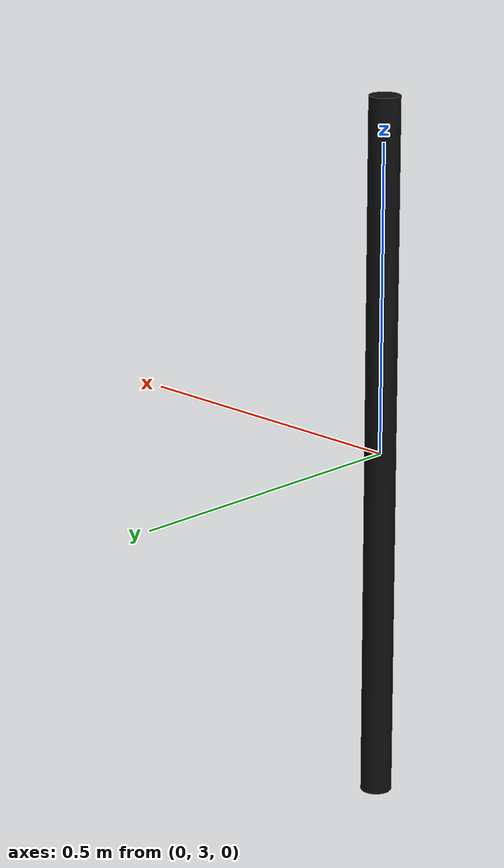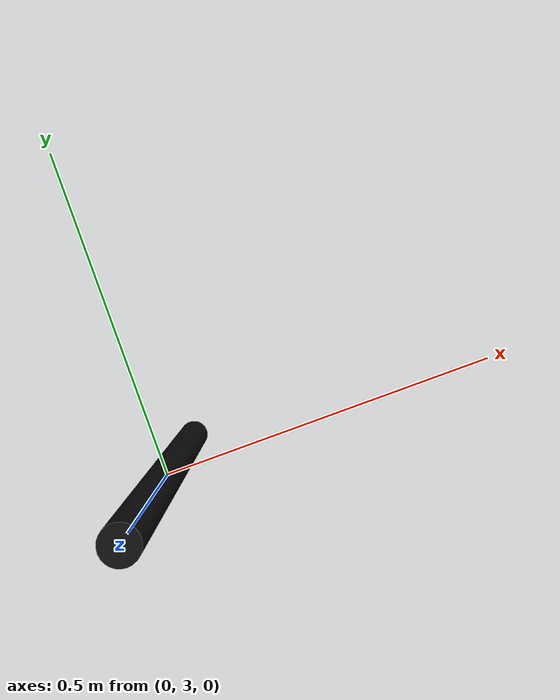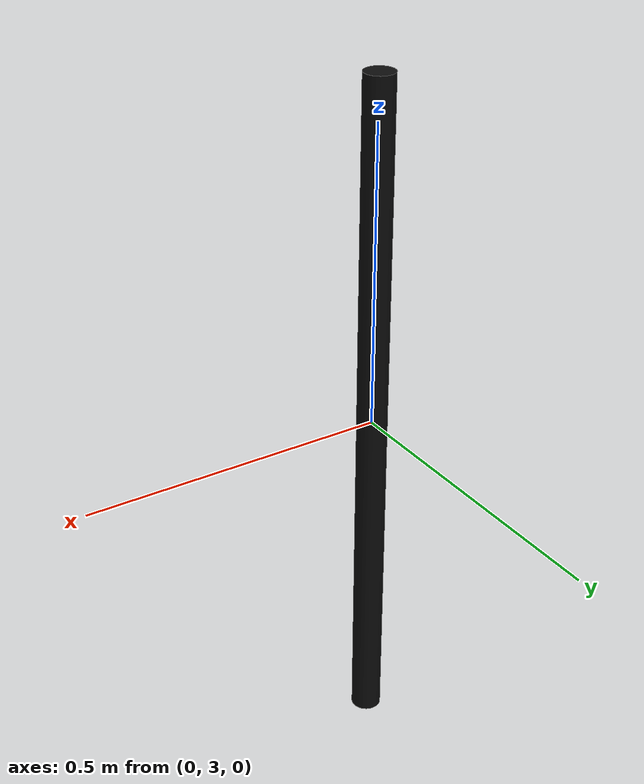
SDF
<?xml version="1.0" ?>
<sdf version="1.5">
<model name="pole">
  <pose>0.0 3.0 0 0.0 0.0 0.0</pose>
  <static>1</static>
  <link name="link">
    <collision name="collision">
      <geometry>
	<cylinder>
	  <length>1.15</length>
	  <radius>0.025</radius>
        </cylinder>
      </geometry>
    </collision>
    <visual name="visual">
      <geometry>
	<cylinder>
	  <length>1.15</length>
	  <radius>0.025</radius>
	</cylinder>
      </geometry>
      <material>
	<script>
	  <uri>file://media/materials/scripts/gazebo.material</uri>
	  <name>Gazebo/Chrome</name>
	</script>
        <shader type='vertex'>
          <normal_map>__default__</normal_map>
        </shader>
        <ambient>0.5 0.5 0.5 1</ambient>
        <diffuse>0.05 0.05 0.05 1</diffuse>
        <specular>0.01 0.01 0.01 1</specular>
        <emissive>0.1 0.1 0.1 1</emissive>
      </material>
    </visual>
  </link>
</model>
</sdf>
